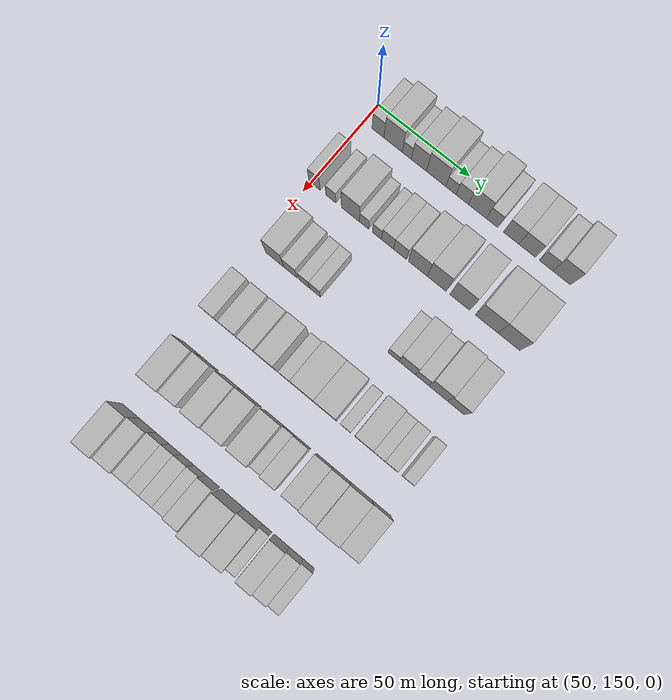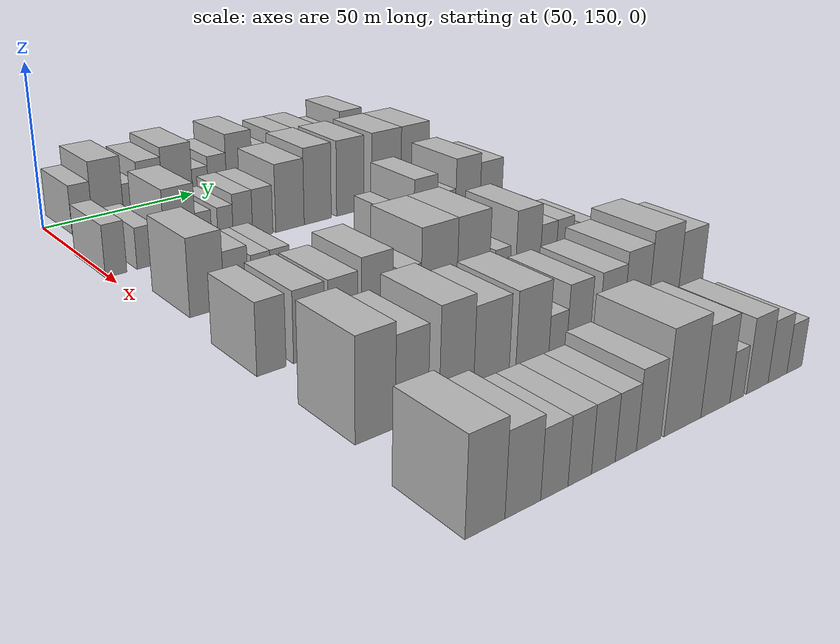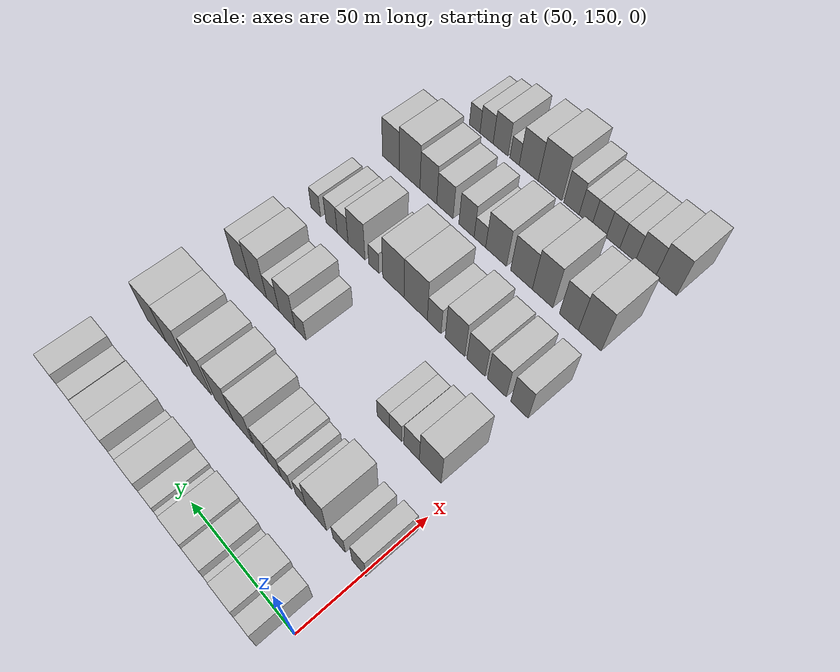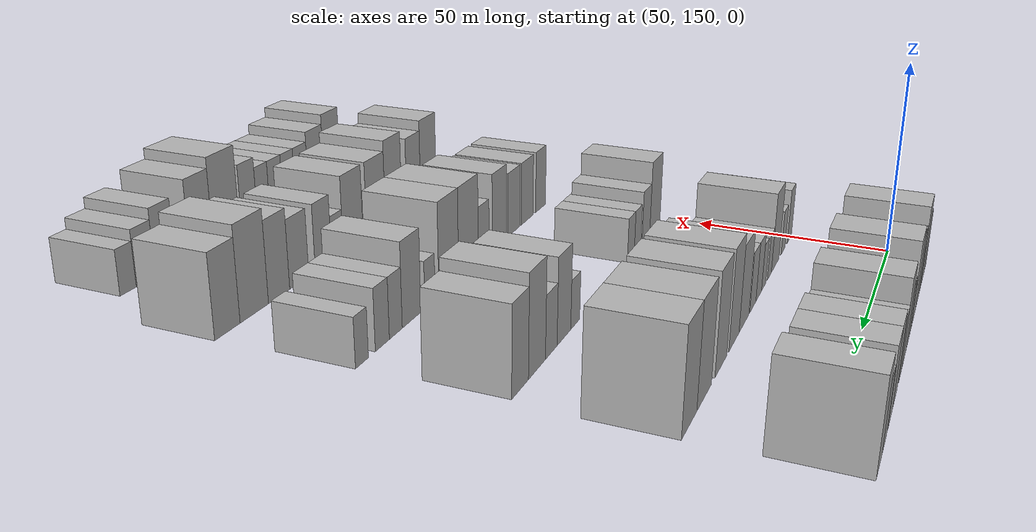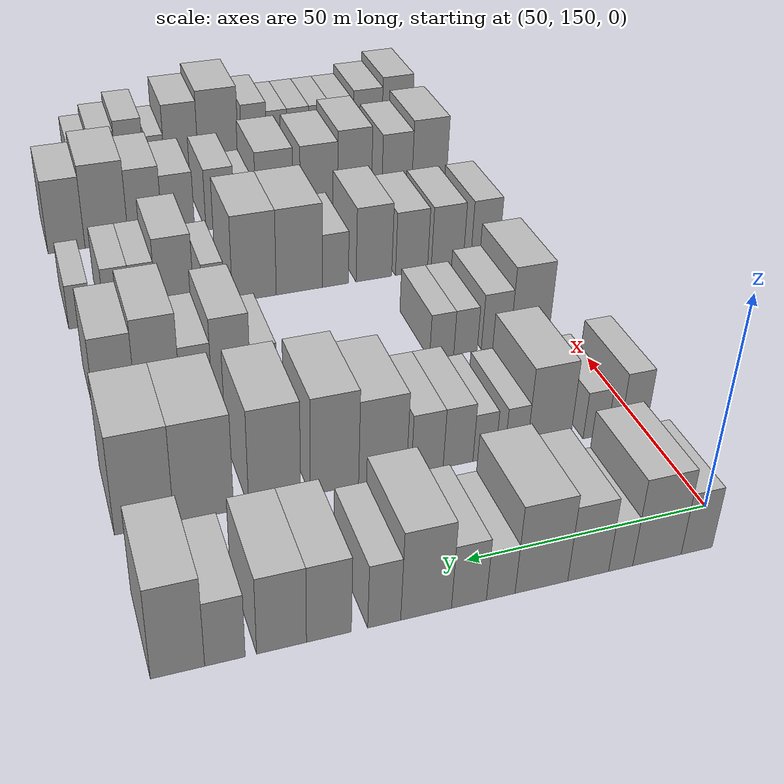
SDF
<sdf version="1.6">
 <world name="default">
  <model name="building_81">
   <static>1</static>
   <pose>50.0000 157.9617 0 0.000000 0.000000 0.000000</pose>
   <link name="link">
    <pose>0 0 7.50 0 0 0</pose>
    <collision name="collision"><geometry><box><size>20.0000 6.5381 15.0000</size></box></geometry></collision>
    <visual name="visual">
     <cast_shadows>0</cast_shadows>
     <geometry><box><size>20.0000 6.5381 15.0000</size></box></geometry>
     <material>
      <script>
       <uri>model://HANNAS_wall/materials/scripts</uri>
       <uri>model://HANNAS_wall/materials/textures</uri>
       <name>vrc/HANNAS_wall</name>
      </script>
     </material>
    </visual>
   </link>
  </model>
  <model name="building_82">
   <static>1</static>
   <pose>50.0000 166.2447 0 0.000000 0.000000 0.000000</pose>
   <link name="link">
    <pose>0 0 10.50 0 0 0</pose>
    <collision name="collision"><geometry><box><size>20.0000 10.0279 21.0000</size></box></geometry></collision>
    <visual name="visual">
     <cast_shadows>0</cast_shadows>
     <geometry><box><size>20.0000 10.0279 21.0000</size></box></geometry>
     <material>
      <script>
       <uri>model://HANNAS_wall/materials/scripts</uri>
       <uri>model://HANNAS_wall/materials/textures</uri>
       <name>vrc/HANNAS_wall</name>
      </script>
     </material>
    </visual>
   </link>
  </model>
  <model name="building_83">
   <static>1</static>
   <pose>50.0000 173.7285 0 0.000000 0.000000 0.000000</pose>
   <link name="link">
    <pose>0 0 6.00 0 0 0</pose>
    <collision name="collision"><geometry><box><size>20.0000 4.9398 12.0000</size></box></geometry></collision>
    <visual name="visual">
     <cast_shadows>0</cast_shadows>
     <geometry><box><size>20.0000 4.9398 12.0000</size></box></geometry>
     <material>
      <script>
       <uri>model://HANNAS_wall/materials/scripts</uri>
       <uri>model://HANNAS_wall/materials/textures</uri>
       <name>vrc/HANNAS_wall</name>
      </script>
     </material>
    </visual>
   </link>
  </model>
  <model name="building_84">
   <static>1</static>
   <pose>50.0000 180.3081 0 0.000000 0.000000 0.000000</pose>
   <link name="link">
    <pose>0 0 9.00 0 0 0</pose>
    <collision name="collision"><geometry><box><size>20.0000 8.2195 18.0000</size></box></geometry></collision>
    <visual name="visual">
     <cast_shadows>0</cast_shadows>
     <geometry><box><size>20.0000 8.2195 18.0000</size></box></geometry>
     <material>
      <script>
       <uri>model://HANNAS_wall/materials/scripts</uri>
       <uri>model://HANNAS_wall/materials/textures</uri>
       <name>vrc/HANNAS_wall</name>
      </script>
     </material>
    </visual>
   </link>
  </model>
  <model name="building_85">
   <static>1</static>
   <pose>50.0000 189.6253 0 0.000000 0.000000 0.000000</pose>
   <link name="link">
    <pose>0 0 10.50 0 0 0</pose>
    <collision name="collision"><geometry><box><size>20.0000 10.4149 21.0000</size></box></geometry></collision>
    <visual name="visual">
     <cast_shadows>0</cast_shadows>
     <geometry><box><size>20.0000 10.4149 21.0000</size></box></geometry>
     <material>
      <script>
       <uri>model://HANNAS_wall/materials/scripts</uri>
       <uri>model://HANNAS_wall/materials/textures</uri>
       <name>vrc/HANNAS_wall</name>
      </script>
     </material>
    </visual>
   </link>
  </model>
  <model name="building_86">
   <static>1</static>
   <pose>50.0000 197.6083 0 0.000000 0.000000 0.000000</pose>
   <link name="link">
    <pose>0 0 6.00 0 0 0</pose>
    <collision name="collision"><geometry><box><size>20.0000 5.5510 12.0000</size></box></geometry></collision>
    <visual name="visual">
     <cast_shadows>0</cast_shadows>
     <geometry><box><size>20.0000 5.5510 12.0000</size></box></geometry>
     <material>
      <script>
       <uri>model://HANNAS_wall/materials/scripts</uri>
       <uri>model://HANNAS_wall/materials/textures</uri>
       <name>vrc/HANNAS_wall</name>
      </script>
     </material>
    </visual>
   </link>
  </model>
  <model name="building_87">
   <static>1</static>
   <pose>50.0000 203.7312 0 0.000000 0.000000 0.000000</pose>
   <link name="link">
    <pose>0 0 7.50 0 0 0</pose>
    <collision name="collision"><geometry><box><size>20.0000 6.6949 15.0000</size></box></geometry></collision>
    <visual name="visual">
     <cast_shadows>0</cast_shadows>
     <geometry><box><size>20.0000 6.6949 15.0000</size></box></geometry>
     <material>
      <script>
       <uri>model://HANNAS_wall/materials/scripts</uri>
       <uri>model://HANNAS_wall/materials/textures</uri>
       <name>vrc/HANNAS_wall</name>
      </script>
     </material>
    </visual>
   </link>
  </model>
  <model name="building_88">
   <static>1</static>
   <pose>50.0000 211.8612 0 0.000000 0.000000 0.000000</pose>
   <link name="link">
    <pose>0 0 10.50 0 0 0</pose>
    <collision name="collision"><geometry><box><size>20.0000 9.5651 21.0000</size></box></geometry></collision>
    <visual name="visual">
     <cast_shadows>0</cast_shadows>
     <geometry><box><size>20.0000 9.5651 21.0000</size></box></geometry>
     <material>
      <script>
       <uri>model://HANNAS_wall/materials/scripts</uri>
       <uri>model://HANNAS_wall/materials/textures</uri>
       <name>vrc/HANNAS_wall</name>
      </script>
     </material>
    </visual>
   </link>
  </model>
  <model name="building_89">
   <static>1</static>
   <pose>50.0000 219.6979 0 0.000000 0.000000 0.000000</pose>
   <link name="link">
    <pose>0 0 7.50 0 0 0</pose>
    <collision name="collision"><geometry><box><size>20.0000 6.1083 15.0000</size></box></geometry></collision>
    <visual name="visual">
     <cast_shadows>0</cast_shadows>
     <geometry><box><size>20.0000 6.1083 15.0000</size></box></geometry>
     <material>
      <script>
       <uri>model://HANNAS_wall/materials/scripts</uri>
       <uri>model://HANNAS_wall/materials/textures</uri>
       <name>vrc/HANNAS_wall</name>
      </script>
     </material>
    </visual>
   </link>
  </model>
  <model name="building_90">
   <static>1</static>
   <pose>50.0000 229.8114 0 0.000000 0.000000 0.000000</pose>
   <link name="link">
    <pose>0 0 9.00 0 0 0</pose>
    <collision name="collision"><geometry><box><size>20.0000 8.1188 18.0000</size></box></geometry></collision>
    <visual name="visual">
     <cast_shadows>0</cast_shadows>
     <geometry><box><size>20.0000 8.1188 18.0000</size></box></geometry>
     <material>
      <script>
       <uri>model://HANNAS_wall/materials/scripts</uri>
       <uri>model://HANNAS_wall/materials/textures</uri>
       <name>vrc/HANNAS_wall</name>
      </script>
     </material>
    </visual>
   </link>
  </model>
  <model name="building_91">
   <static>1</static>
   <pose>50.0000 238.2977 0 0.000000 0.000000 0.000000</pose>
   <link name="link">
    <pose>0 0 9.00 0 0 0</pose>
    <collision name="collision"><geometry><box><size>20.0000 8.8539 18.0000</size></box></geometry></collision>
    <visual name="visual">
     <cast_shadows>0</cast_shadows>
     <geometry><box><size>20.0000 8.8539 18.0000</size></box></geometry>
     <material>
      <script>
       <uri>model://HANNAS_wall/materials/scripts</uri>
       <uri>model://HANNAS_wall/materials/textures</uri>
       <name>vrc/HANNAS_wall</name>
      </script>
     </material>
    </visual>
   </link>
  </model>
  <model name="building_92">
   <static>1</static>
   <pose>50.0000 248.2435 0 0.000000 0.000000 0.000000</pose>
   <link name="link">
    <pose>0 0 7.50 0 0 0</pose>
    <collision name="collision"><geometry><box><size>20.0000 7.0377 15.0000</size></box></geometry></collision>
    <visual name="visual">
     <cast_shadows>0</cast_shadows>
     <geometry><box><size>20.0000 7.0377 15.0000</size></box></geometry>
     <material>
      <script>
       <uri>model://HANNAS_wall/materials/scripts</uri>
       <uri>model://HANNAS_wall/materials/textures</uri>
       <name>vrc/HANNAS_wall</name>
      </script>
     </material>
    </visual>
   </link>
  </model>
  <model name="building_93">
   <static>1</static>
   <pose>50.0000 256.4034 0 0.000000 0.000000 0.000000</pose>
   <link name="link">
    <pose>0 0 10.50 0 0 0</pose>
    <collision name="collision"><geometry><box><size>20.0000 9.2820 21.0000</size></box></geometry></collision>
    <visual name="visual">
     <cast_shadows>0</cast_shadows>
     <geometry><box><size>20.0000 9.2820 21.0000</size></box></geometry>
     <material>
      <script>
       <uri>model://HANNAS_wall/materials/scripts</uri>
       <uri>model://HANNAS_wall/materials/textures</uri>
       <name>vrc/HANNAS_wall</name>
      </script>
     </material>
    </visual>
   </link>
  </model>
  <model name="building_209">
   <static>1</static>
   <pose>85.0000 152.1197 0 0.000000 0.000000 0.000000</pose>
   <link name="link">
    <pose>0 0 7.50 0 0 0</pose>
    <collision name="collision"><geometry><box><size>20.0000 6.2400 15.0000</size></box></geometry></collision>
    <visual name="visual">
     <cast_shadows>0</cast_shadows>
     <geometry><box><size>20.0000 6.2400 15.0000</size></box></geometry>
     <material>
      <script>
       <uri>model://HANNAS_wall/materials/scripts</uri>
       <uri>model://HANNAS_wall/materials/textures</uri>
       <name>vrc/HANNAS_wall</name>
      </script>
     </material>
    </visual>
   </link>
  </model>
  <model name="building_210">
   <static>1</static>
   <pose>85.0000 161.0272 0 0.000000 0.000000 0.000000</pose>
   <link name="link">
    <pose>0 0 6.00 0 0 0</pose>
    <collision name="collision"><geometry><box><size>20.0000 5.5750 12.0000</size></box></geometry></collision>
    <visual name="visual">
     <cast_shadows>0</cast_shadows>
     <geometry><box><size>20.0000 5.5750 12.0000</size></box></geometry>
     <material>
      <script>
       <uri>model://HANNAS_wall/materials/scripts</uri>
       <uri>model://HANNAS_wall/materials/textures</uri>
       <name>vrc/HANNAS_wall</name>
      </script>
     </material>
    </visual>
   </link>
  </model>
  <model name="building_211">
   <static>1</static>
   <pose>85.0000 171.6989 0 0.000000 0.000000 0.000000</pose>
   <link name="link">
    <pose>0 0 10.50 0 0 0</pose>
    <collision name="collision"><geometry><box><size>20.0000 9.7683 21.0000</size></box></geometry></collision>
    <visual name="visual">
     <cast_shadows>0</cast_shadows>
     <geometry><box><size>20.0000 9.7683 21.0000</size></box></geometry>
     <material>
      <script>
       <uri>model://HANNAS_wall/materials/scripts</uri>
       <uri>model://HANNAS_wall/materials/textures</uri>
       <name>vrc/HANNAS_wall</name>
      </script>
     </material>
    </visual>
   </link>
  </model>
  <model name="building_212">
   <static>1</static>
   <pose>85.0000 179.0730 0 0.000000 0.000000 0.000000</pose>
   <link name="link">
    <pose>0 0 6.00 0 0 0</pose>
    <collision name="collision"><geometry><box><size>20.0000 4.9799 12.0000</size></box></geometry></collision>
    <visual name="visual">
     <cast_shadows>0</cast_shadows>
     <geometry><box><size>20.0000 4.9799 12.0000</size></box></geometry>
     <material>
      <script>
       <uri>model://HANNAS_wall/materials/scripts</uri>
       <uri>model://HANNAS_wall/materials/textures</uri>
       <name>vrc/HANNAS_wall</name>
      </script>
     </material>
    </visual>
   </link>
  </model>
  <model name="building_213">
   <static>1</static>
   <pose>85.0000 186.0556 0 0.000000 0.000000 0.000000</pose>
   <link name="link">
    <pose>0 0 6.00 0 0 0</pose>
    <collision name="collision"><geometry><box><size>20.0000 4.9852 12.0000</size></box></geometry></collision>
    <visual name="visual">
     <cast_shadows>0</cast_shadows>
     <geometry><box><size>20.0000 4.9852 12.0000</size></box></geometry>
     <material>
      <script>
       <uri>model://HANNAS_wall/materials/scripts</uri>
       <uri>model://HANNAS_wall/materials/textures</uri>
       <name>vrc/HANNAS_wall</name>
      </script>
     </material>
    </visual>
   </link>
  </model>
  <model name="building_214">
   <static>1</static>
   <pose>85.0000 191.7838 0 0.000000 0.000000 0.000000</pose>
   <link name="link">
    <pose>0 0 7.50 0 0 0</pose>
    <collision name="collision"><geometry><box><size>20.0000 6.4712 15.0000</size></box></geometry></collision>
    <visual name="visual">
     <cast_shadows>0</cast_shadows>
     <geometry><box><size>20.0000 6.4712 15.0000</size></box></geometry>
     <material>
      <script>
       <uri>model://HANNAS_wall/materials/scripts</uri>
       <uri>model://HANNAS_wall/materials/textures</uri>
       <name>vrc/HANNAS_wall</name>
      </script>
     </material>
    </visual>
   </link>
  </model>
  <model name="building_215">
   <static>1</static>
   <pose>85.0000 198.4610 0 0.000000 0.000000 0.000000</pose>
   <link name="link">
    <pose>0 0 7.50 0 0 0</pose>
    <collision name="collision"><geometry><box><size>20.0000 6.8832 15.0000</size></box></geometry></collision>
    <visual name="visual">
     <cast_shadows>0</cast_shadows>
     <geometry><box><size>20.0000 6.8832 15.0000</size></box></geometry>
     <material>
      <script>
       <uri>model://HANNAS_wall/materials/scripts</uri>
       <uri>model://HANNAS_wall/materials/textures</uri>
       <name>vrc/HANNAS_wall</name>
      </script>
     </material>
    </visual>
   </link>
  </model>
  <model name="building_216">
   <static>1</static>
   <pose>85.0000 207.9608 0 0.000000 0.000000 0.000000</pose>
   <link name="link">
    <pose>0 0 10.50 0 0 0</pose>
    <collision name="collision"><geometry><box><size>20.0000 10.1166 21.0000</size></box></geometry></collision>
    <visual name="visual">
     <cast_shadows>0</cast_shadows>
     <geometry><box><size>20.0000 10.1166 21.0000</size></box></geometry>
     <material>
      <script>
       <uri>model://HANNAS_wall/materials/scripts</uri>
       <uri>model://HANNAS_wall/materials/textures</uri>
       <name>vrc/HANNAS_wall</name>
      </script>
     </material>
    </visual>
   </link>
  </model>
  <model name="building_217">
   <static>1</static>
   <pose>85.0000 218.0150 0 0.000000 0.000000 0.000000</pose>
   <link name="link">
    <pose>0 0 12.00 0 0 0</pose>
    <collision name="collision"><geometry><box><size>20.0000 9.9918 24.0000</size></box></geometry></collision>
    <visual name="visual">
     <cast_shadows>0</cast_shadows>
     <geometry><box><size>20.0000 9.9918 24.0000</size></box></geometry>
     <material>
      <script>
       <uri>model://HANNAS_wall/materials/scripts</uri>
       <uri>model://HANNAS_wall/materials/textures</uri>
       <name>vrc/HANNAS_wall</name>
      </script>
     </material>
    </visual>
   </link>
  </model>
  <model name="building_218">
   <static>1</static>
   <pose>85.0000 230.2554 0 0.000000 0.000000 0.000000</pose>
   <link name="link">
    <pose>0 0 12.00 0 0 0</pose>
    <collision name="collision"><geometry><box><size>20.0000 10.4891 24.0000</size></box></geometry></collision>
    <visual name="visual">
     <cast_shadows>0</cast_shadows>
     <geometry><box><size>20.0000 10.4891 24.0000</size></box></geometry>
     <material>
      <script>
       <uri>model://HANNAS_wall/materials/scripts</uri>
       <uri>model://HANNAS_wall/materials/textures</uri>
       <name>vrc/HANNAS_wall</name>
      </script>
     </material>
    </visual>
   </link>
  </model>
  <model name="building_219">
   <static>1</static>
   <pose>85.0000 244.3786 0 0.000000 0.000000 0.000000</pose>
   <link name="link">
    <pose>0 0 12.00 0 0 0</pose>
    <collision name="collision"><geometry><box><size>20.0000 11.7572 24.0000</size></box></geometry></collision>
    <visual name="visual">
     <cast_shadows>0</cast_shadows>
     <geometry><box><size>20.0000 11.7572 24.0000</size></box></geometry>
     <material>
      <script>
       <uri>model://HANNAS_wall/materials/scripts</uri>
       <uri>model://HANNAS_wall/materials/textures</uri>
       <name>vrc/HANNAS_wall</name>
      </script>
     </material>
    </visual>
   </link>
  </model>
  <model name="building_220">
   <static>1</static>
   <pose>85.0000 255.9901 0 0.000000 0.000000 0.000000</pose>
   <link name="link">
    <pose>0 0 12.00 0 0 0</pose>
    <collision name="collision"><geometry><box><size>20.0000 11.4658 24.0000</size></box></geometry></collision>
    <visual name="visual">
     <cast_shadows>0</cast_shadows>
     <geometry><box><size>20.0000 11.4658 24.0000</size></box></geometry>
     <material>
      <script>
       <uri>model://HANNAS_wall/materials/scripts</uri>
       <uri>model://HANNAS_wall/materials/textures</uri>
       <name>vrc/HANNAS_wall</name>
      </script>
     </material>
    </visual>
   </link>
  </model>
  <model name="building_339">
   <static>1</static>
   <pose>120.0000 160.0223 0 0.000000 0.000000 0.000000</pose>
   <link name="link">
    <pose>0 0 10.50 0 0 0</pose>
    <collision name="collision"><geometry><box><size>20.0000 9.7474 21.0000</size></box></geometry></collision>
    <visual name="visual">
     <cast_shadows>0</cast_shadows>
     <geometry><box><size>20.0000 9.7474 21.0000</size></box></geometry>
     <material>
      <script>
       <uri>model://HANNAS_wall/materials/scripts</uri>
       <uri>model://HANNAS_wall/materials/textures</uri>
       <name>vrc/HANNAS_wall</name>
      </script>
     </material>
    </visual>
   </link>
  </model>
  <model name="building_340">
   <static>1</static>
   <pose>120.0000 168.4548 0 0.000000 0.000000 0.000000</pose>
   <link name="link">
    <pose>0 0 7.50 0 0 0</pose>
    <collision name="collision"><geometry><box><size>20.0000 7.1176 15.0000</size></box></geometry></collision>
    <visual name="visual">
     <cast_shadows>0</cast_shadows>
     <geometry><box><size>20.0000 7.1176 15.0000</size></box></geometry>
     <material>
      <script>
       <uri>model://HANNAS_wall/materials/scripts</uri>
       <uri>model://HANNAS_wall/materials/textures</uri>
       <name>vrc/HANNAS_wall</name>
      </script>
     </material>
    </visual>
   </link>
  </model>
  <model name="building_341">
   <static>1</static>
   <pose>120.0000 175.8916 0 0.000000 0.000000 0.000000</pose>
   <link name="link">
    <pose>0 0 6.00 0 0 0</pose>
    <collision name="collision"><geometry><box><size>20.0000 5.7561 12.0000</size></box></geometry></collision>
    <visual name="visual">
     <cast_shadows>0</cast_shadows>
     <geometry><box><size>20.0000 5.7561 12.0000</size></box></geometry>
     <material>
      <script>
       <uri>model://HANNAS_wall/materials/scripts</uri>
       <uri>model://HANNAS_wall/materials/textures</uri>
       <name>vrc/HANNAS_wall</name>
      </script>
     </material>
    </visual>
   </link>
  </model>
  <model name="building_342">
   <static>1</static>
   <pose>120.0000 181.7169 0 0.000000 0.000000 0.000000</pose>
   <link name="link">
    <pose>0 0 6.00 0 0 0</pose>
    <collision name="collision"><geometry><box><size>20.0000 5.8945 12.0000</size></box></geometry></collision>
    <visual name="visual">
     <cast_shadows>0</cast_shadows>
     <geometry><box><size>20.0000 5.8945 12.0000</size></box></geometry>
     <material>
      <script>
       <uri>model://HANNAS_wall/materials/scripts</uri>
       <uri>model://HANNAS_wall/materials/textures</uri>
       <name>vrc/HANNAS_wall</name>
      </script>
     </material>
    </visual>
   </link>
  </model>
  <model name="building_343">
   <static>1</static>
   <pose>120.0000 223.5016 0 0.000000 0.000000 0.000000</pose>
   <link name="link">
    <pose>0 0 6.00 0 0 0</pose>
    <collision name="collision"><geometry><box><size>20.0000 5.8916 12.0000</size></box></geometry></collision>
    <visual name="visual">
     <cast_shadows>0</cast_shadows>
     <geometry><box><size>20.0000 5.8916 12.0000</size></box></geometry>
     <material>
      <script>
       <uri>model://HANNAS_wall/materials/scripts</uri>
       <uri>model://HANNAS_wall/materials/textures</uri>
       <name>vrc/HANNAS_wall</name>
      </script>
     </material>
    </visual>
   </link>
  </model>
  <model name="building_344">
   <static>1</static>
   <pose>120.0000 230.7535 0 0.000000 0.000000 0.000000</pose>
   <link name="link">
    <pose>0 0 10.50 0 0 0</pose>
    <collision name="collision"><geometry><box><size>20.0000 8.6122 21.0000</size></box></geometry></collision>
    <visual name="visual">
     <cast_shadows>0</cast_shadows>
     <geometry><box><size>20.0000 8.6122 21.0000</size></box></geometry>
     <material>
      <script>
       <uri>model://HANNAS_wall/materials/scripts</uri>
       <uri>model://HANNAS_wall/materials/textures</uri>
       <name>vrc/HANNAS_wall</name>
      </script>
     </material>
    </visual>
   </link>
  </model>
  <model name="building_345">
   <static>1</static>
   <pose>120.0000 238.5213 0 0.000000 0.000000 0.000000</pose>
   <link name="link">
    <pose>0 0 7.50 0 0 0</pose>
    <collision name="collision"><geometry><box><size>20.0000 6.9234 15.0000</size></box></geometry></collision>
    <visual name="visual">
     <cast_shadows>0</cast_shadows>
     <geometry><box><size>20.0000 6.9234 15.0000</size></box></geometry>
     <material>
      <script>
       <uri>model://HANNAS_wall/materials/scripts</uri>
       <uri>model://HANNAS_wall/materials/textures</uri>
       <name>vrc/HANNAS_wall</name>
      </script>
     </material>
    </visual>
   </link>
  </model>
  <model name="building_346">
   <static>1</static>
   <pose>120.0000 246.7833 0 0.000000 0.000000 0.000000</pose>
   <link name="link">
    <pose>0 0 12.00 0 0 0</pose>
    <collision name="collision"><geometry><box><size>20.0000 9.6006 24.0000</size></box></geometry></collision>
    <visual name="visual">
     <cast_shadows>0</cast_shadows>
     <geometry><box><size>20.0000 9.6006 24.0000</size></box></geometry>
     <material>
      <script>
       <uri>model://HANNAS_wall/materials/scripts</uri>
       <uri>model://HANNAS_wall/materials/textures</uri>
       <name>vrc/HANNAS_wall</name>
      </script>
     </material>
    </visual>
   </link>
  </model>
  <model name="building_347">
   <static>1</static>
   <pose>120.0000 256.0207 0 0.000000 0.000000 0.000000</pose>
   <link name="link">
    <pose>0 0 10.50 0 0 0</pose>
    <collision name="collision"><geometry><box><size>20.0000 8.8743 21.0000</size></box></geometry></collision>
    <visual name="visual">
     <cast_shadows>0</cast_shadows>
     <geometry><box><size>20.0000 8.8743 21.0000</size></box></geometry>
     <material>
      <script>
       <uri>model://HANNAS_wall/materials/scripts</uri>
       <uri>model://HANNAS_wall/materials/textures</uri>
       <name>vrc/HANNAS_wall</name>
      </script>
     </material>
    </visual>
   </link>
  </model>
  <model name="building_463">
   <static>1</static>
   <pose>155.0000 156.4435 0 0.000000 0.000000 0.000000</pose>
   <link name="link">
    <pose>0 0 9.00 0 0 0</pose>
    <collision name="collision"><geometry><box><size>20.0000 7.7171 18.0000</size></box></geometry></collision>
    <visual name="visual">
     <cast_shadows>0</cast_shadows>
     <geometry><box><size>20.0000 7.7171 18.0000</size></box></geometry>
     <material>
      <script>
       <uri>model://HANNAS_wall/materials/scripts</uri>
       <uri>model://HANNAS_wall/materials/textures</uri>
       <name>vrc/HANNAS_wall</name>
      </script>
     </material>
    </visual>
   </link>
  </model>
  <model name="building_464">
   <static>1</static>
   <pose>155.0000 166.6281 0 0.000000 0.000000 0.000000</pose>
   <link name="link">
    <pose>0 0 9.00 0 0 0</pose>
    <collision name="collision"><geometry><box><size>20.0000 8.6519 18.0000</size></box></geometry></collision>
    <visual name="visual">
     <cast_shadows>0</cast_shadows>
     <geometry><box><size>20.0000 8.6519 18.0000</size></box></geometry>
     <material>
      <script>
       <uri>model://HANNAS_wall/materials/scripts</uri>
       <uri>model://HANNAS_wall/materials/textures</uri>
       <name>vrc/HANNAS_wall</name>
      </script>
     </material>
    </visual>
   </link>
  </model>
  <model name="building_465">
   <static>1</static>
   <pose>155.0000 176.2298 0 0.000000 0.000000 0.000000</pose>
   <link name="link">
    <pose>0 0 9.00 0 0 0</pose>
    <collision name="collision"><geometry><box><size>20.0000 8.5515 18.0000</size></box></geometry></collision>
    <visual name="visual">
     <cast_shadows>0</cast_shadows>
     <geometry><box><size>20.0000 8.5515 18.0000</size></box></geometry>
     <material>
      <script>
       <uri>model://HANNAS_wall/materials/scripts</uri>
       <uri>model://HANNAS_wall/materials/textures</uri>
       <name>vrc/HANNAS_wall</name>
      </script>
     </material>
    </visual>
   </link>
  </model>
  <model name="building_466">
   <static>1</static>
   <pose>155.0000 186.1876 0 0.000000 0.000000 0.000000</pose>
   <link name="link">
    <pose>0 0 10.50 0 0 0</pose>
    <collision name="collision"><geometry><box><size>20.0000 9.3641 21.0000</size></box></geometry></collision>
    <visual name="visual">
     <cast_shadows>0</cast_shadows>
     <geometry><box><size>20.0000 9.3641 21.0000</size></box></geometry>
     <material>
      <script>
       <uri>model://HANNAS_wall/materials/scripts</uri>
       <uri>model://HANNAS_wall/materials/textures</uri>
       <name>vrc/HANNAS_wall</name>
      </script>
     </material>
    </visual>
   </link>
  </model>
  <model name="building_467">
   <static>1</static>
   <pose>155.0000 196.2590 0 0.000000 0.000000 0.000000</pose>
   <link name="link">
    <pose>0 0 7.50 0 0 0</pose>
    <collision name="collision"><geometry><box><size>20.0000 6.7789 15.0000</size></box></geometry></collision>
    <visual name="visual">
     <cast_shadows>0</cast_shadows>
     <geometry><box><size>20.0000 6.7789 15.0000</size></box></geometry>
     <material>
      <script>
       <uri>model://HANNAS_wall/materials/scripts</uri>
       <uri>model://HANNAS_wall/materials/textures</uri>
       <name>vrc/HANNAS_wall</name>
      </script>
     </material>
    </visual>
   </link>
  </model>
  <model name="building_468">
   <static>1</static>
   <pose>155.0000 205.4991 0 0.000000 0.000000 0.000000</pose>
   <link name="link">
    <pose>0 0 12.00 0 0 0</pose>
    <collision name="collision"><geometry><box><size>20.0000 11.7012 24.0000</size></box></geometry></collision>
    <visual name="visual">
     <cast_shadows>0</cast_shadows>
     <geometry><box><size>20.0000 11.7012 24.0000</size></box></geometry>
     <material>
      <script>
       <uri>model://HANNAS_wall/materials/scripts</uri>
       <uri>model://HANNAS_wall/materials/textures</uri>
       <name>vrc/HANNAS_wall</name>
      </script>
     </material>
    </visual>
   </link>
  </model>
  <model name="building_469">
   <static>1</static>
   <pose>155.0000 216.8418 0 0.000000 0.000000 0.000000</pose>
   <link name="link">
    <pose>0 0 12.00 0 0 0</pose>
    <collision name="collision"><geometry><box><size>20.0000 10.9840 24.0000</size></box></geometry></collision>
    <visual name="visual">
     <cast_shadows>0</cast_shadows>
     <geometry><box><size>20.0000 10.9840 24.0000</size></box></geometry>
     <material>
      <script>
       <uri>model://HANNAS_wall/materials/scripts</uri>
       <uri>model://HANNAS_wall/materials/textures</uri>
       <name>vrc/HANNAS_wall</name>
      </script>
     </material>
    </visual>
   </link>
  </model>
  <model name="building_470">
   <static>1</static>
   <pose>155.0000 227.0355 0 0.000000 0.000000 0.000000</pose>
   <link name="link">
    <pose>0 0 6.00 0 0 0</pose>
    <collision name="collision"><geometry><box><size>20.0000 5.4035 12.0000</size></box></geometry></collision>
    <visual name="visual">
     <cast_shadows>0</cast_shadows>
     <geometry><box><size>20.0000 5.4035 12.0000</size></box></geometry>
     <material>
      <script>
       <uri>model://HANNAS_wall/materials/scripts</uri>
       <uri>model://HANNAS_wall/materials/textures</uri>
       <name>vrc/HANNAS_wall</name>
      </script>
     </material>
    </visual>
   </link>
  </model>
  <model name="building_471">
   <static>1</static>
   <pose>155.0000 236.3122 0 0.000000 0.000000 0.000000</pose>
   <link name="link">
    <pose>0 0 10.50 0 0 0</pose>
    <collision name="collision"><geometry><box><size>20.0000 9.1499 21.0000</size></box></geometry></collision>
    <visual name="visual">
     <cast_shadows>0</cast_shadows>
     <geometry><box><size>20.0000 9.1499 21.0000</size></box></geometry>
     <material>
      <script>
       <uri>model://HANNAS_wall/materials/scripts</uri>
       <uri>model://HANNAS_wall/materials/textures</uri>
       <name>vrc/HANNAS_wall</name>
      </script>
     </material>
    </visual>
   </link>
  </model>
  <model name="building_472">
   <static>1</static>
   <pose>155.0000 243.9058 0 0.000000 0.000000 0.000000</pose>
   <link name="link">
    <pose>0 0 7.50 0 0 0</pose>
    <collision name="collision"><geometry><box><size>20.0000 6.0373 15.0000</size></box></geometry></collision>
    <visual name="visual">
     <cast_shadows>0</cast_shadows>
     <geometry><box><size>20.0000 6.0373 15.0000</size></box></geometry>
     <material>
      <script>
       <uri>model://HANNAS_wall/materials/scripts</uri>
       <uri>model://HANNAS_wall/materials/textures</uri>
       <name>vrc/HANNAS_wall</name>
      </script>
     </material>
    </visual>
   </link>
  </model>
  <model name="building_473">
   <static>1</static>
   <pose>155.0000 250.0915 0 0.000000 0.000000 0.000000</pose>
   <link name="link">
    <pose>0 0 7.50 0 0 0</pose>
    <collision name="collision"><geometry><box><size>20.0000 6.3339 15.0000</size></box></geometry></collision>
    <visual name="visual">
     <cast_shadows>0</cast_shadows>
     <geometry><box><size>20.0000 6.3339 15.0000</size></box></geometry>
     <material>
      <script>
       <uri>model://HANNAS_wall/materials/scripts</uri>
       <uri>model://HANNAS_wall/materials/textures</uri>
       <name>vrc/HANNAS_wall</name>
      </script>
     </material>
    </visual>
   </link>
  </model>
  <model name="building_474">
   <static>1</static>
   <pose>155.0000 258.9970 0 0.000000 0.000000 0.000000</pose>
   <link name="link">
    <pose>0 0 6.00 0 0 0</pose>
    <collision name="collision"><geometry><box><size>20.0000 5.4772 12.0000</size></box></geometry></collision>
    <visual name="visual">
     <cast_shadows>0</cast_shadows>
     <geometry><box><size>20.0000 5.4772 12.0000</size></box></geometry>
     <material>
      <script>
       <uri>model://HANNAS_wall/materials/scripts</uri>
       <uri>model://HANNAS_wall/materials/textures</uri>
       <name>vrc/HANNAS_wall</name>
      </script>
     </material>
    </visual>
   </link>
  </model>
  <model name="building_592">
   <static>1</static>
   <pose>190.0000 158.4571 0 0.000000 0.000000 0.000000</pose>
   <link name="link">
    <pose>0 0 12.00 0 0 0</pose>
    <collision name="collision"><geometry><box><size>20.0000 10.1524 24.0000</size></box></geometry></collision>
    <visual name="visual">
     <cast_shadows>0</cast_shadows>
     <geometry><box><size>20.0000 10.1524 24.0000</size></box></geometry>
     <material>
      <script>
       <uri>model://HANNAS_wall/materials/scripts</uri>
       <uri>model://HANNAS_wall/materials/textures</uri>
       <name>vrc/HANNAS_wall</name>
      </script>
     </material>
    </visual>
   </link>
  </model>
  <model name="building_593">
   <static>1</static>
   <pose>190.0000 167.8849 0 0.000000 0.000000 0.000000</pose>
   <link name="link">
    <pose>0 0 10.50 0 0 0</pose>
    <collision name="collision"><geometry><box><size>20.0000 8.7031 21.0000</size></box></geometry></collision>
    <visual name="visual">
     <cast_shadows>0</cast_shadows>
     <geometry><box><size>20.0000 8.7031 21.0000</size></box></geometry>
     <material>
      <script>
       <uri>model://HANNAS_wall/materials/scripts</uri>
       <uri>model://HANNAS_wall/materials/textures</uri>
       <name>vrc/HANNAS_wall</name>
      </script>
     </material>
    </visual>
   </link>
  </model>
  <model name="building_594">
   <static>1</static>
   <pose>190.0000 180.0521 0 0.000000 0.000000 0.000000</pose>
   <link name="link">
    <pose>0 0 12.00 0 0 0</pose>
    <collision name="collision"><geometry><box><size>20.0000 9.6314 24.0000</size></box></geometry></collision>
    <visual name="visual">
     <cast_shadows>0</cast_shadows>
     <geometry><box><size>20.0000 9.6314 24.0000</size></box></geometry>
     <material>
      <script>
       <uri>model://HANNAS_wall/materials/scripts</uri>
       <uri>model://HANNAS_wall/materials/textures</uri>
       <name>vrc/HANNAS_wall</name>
      </script>
     </material>
    </visual>
   </link>
  </model>
  <model name="building_595">
   <static>1</static>
   <pose>190.0000 190.1005 0 0.000000 0.000000 0.000000</pose>
   <link name="link">
    <pose>0 0 10.50 0 0 0</pose>
    <collision name="collision"><geometry><box><size>20.0000 10.4653 21.0000</size></box></geometry></collision>
    <visual name="visual">
     <cast_shadows>0</cast_shadows>
     <geometry><box><size>20.0000 10.4653 21.0000</size></box></geometry>
     <material>
      <script>
       <uri>model://HANNAS_wall/materials/scripts</uri>
       <uri>model://HANNAS_wall/materials/textures</uri>
       <name>vrc/HANNAS_wall</name>
      </script>
     </material>
    </visual>
   </link>
  </model>
  <model name="building_596">
   <static>1</static>
   <pose>190.0000 202.5009 0 0.000000 0.000000 0.000000</pose>
   <link name="link">
    <pose>0 0 10.50 0 0 0</pose>
    <collision name="collision"><geometry><box><size>20.0000 10.3355 21.0000</size></box></geometry></collision>
    <visual name="visual">
     <cast_shadows>0</cast_shadows>
     <geometry><box><size>20.0000 10.3355 21.0000</size></box></geometry>
     <material>
      <script>
       <uri>model://HANNAS_wall/materials/scripts</uri>
       <uri>model://HANNAS_wall/materials/textures</uri>
       <name>vrc/HANNAS_wall</name>
      </script>
     </material>
    </visual>
   </link>
  </model>
  <model name="building_597">
   <static>1</static>
   <pose>190.0000 210.5883 0 0.000000 0.000000 0.000000</pose>
   <link name="link">
    <pose>0 0 6.00 0 0 0</pose>
    <collision name="collision"><geometry><box><size>20.0000 5.8393 12.0000</size></box></geometry></collision>
    <visual name="visual">
     <cast_shadows>0</cast_shadows>
     <geometry><box><size>20.0000 5.8393 12.0000</size></box></geometry>
     <material>
      <script>
       <uri>model://HANNAS_wall/materials/scripts</uri>
       <uri>model://HANNAS_wall/materials/textures</uri>
       <name>vrc/HANNAS_wall</name>
      </script>
     </material>
    </visual>
   </link>
  </model>
  <model name="building_598">
   <static>1</static>
   <pose>190.0000 217.4250 0 0.000000 0.000000 0.000000</pose>
   <link name="link">
    <pose>0 0 9.00 0 0 0</pose>
    <collision name="collision"><geometry><box><size>20.0000 7.8341 18.0000</size></box></geometry></collision>
    <visual name="visual">
     <cast_shadows>0</cast_shadows>
     <geometry><box><size>20.0000 7.8341 18.0000</size></box></geometry>
     <material>
      <script>
       <uri>model://HANNAS_wall/materials/scripts</uri>
       <uri>model://HANNAS_wall/materials/textures</uri>
       <name>vrc/HANNAS_wall</name>
      </script>
     </material>
    </visual>
   </link>
  </model>
  <model name="building_599">
   <static>1</static>
   <pose>190.0000 228.6364 0 0.000000 0.000000 0.000000</pose>
   <link name="link">
    <pose>0 0 9.00 0 0 0</pose>
    <collision name="collision"><geometry><box><size>20.0000 8.5889 18.0000</size></box></geometry></collision>
    <visual name="visual">
     <cast_shadows>0</cast_shadows>
     <geometry><box><size>20.0000 8.5889 18.0000</size></box></geometry>
     <material>
      <script>
       <uri>model://HANNAS_wall/materials/scripts</uri>
       <uri>model://HANNAS_wall/materials/textures</uri>
       <name>vrc/HANNAS_wall</name>
      </script>
     </material>
    </visual>
   </link>
  </model>
  <model name="building_600">
   <static>1</static>
   <pose>190.0000 237.4412 0 0.000000 0.000000 0.000000</pose>
   <link name="link">
    <pose>0 0 10.50 0 0 0</pose>
    <collision name="collision"><geometry><box><size>20.0000 9.0208 21.0000</size></box></geometry></collision>
    <visual name="visual">
     <cast_shadows>0</cast_shadows>
     <geometry><box><size>20.0000 9.0208 21.0000</size></box></geometry>
     <material>
      <script>
       <uri>model://HANNAS_wall/materials/scripts</uri>
       <uri>model://HANNAS_wall/materials/textures</uri>
       <name>vrc/HANNAS_wall</name>
      </script>
     </material>
    </visual>
   </link>
  </model>
  <model name="building_601">
   <static>1</static>
   <pose>190.0000 247.6116 0 0.000000 0.000000 0.000000</pose>
   <link name="link">
    <pose>0 0 12.00 0 0 0</pose>
    <collision name="collision"><geometry><box><size>20.0000 11.3200 24.0000</size></box></geometry></collision>
    <visual name="visual">
     <cast_shadows>0</cast_shadows>
     <geometry><box><size>20.0000 11.3200 24.0000</size></box></geometry>
     <material>
      <script>
       <uri>model://HANNAS_wall/materials/scripts</uri>
       <uri>model://HANNAS_wall/materials/textures</uri>
       <name>vrc/HANNAS_wall</name>
      </script>
     </material>
    </visual>
   </link>
  </model>
  <model name="building_602">
   <static>1</static>
   <pose>190.0000 258.0225 0 0.000000 0.000000 0.000000</pose>
   <link name="link">
    <pose>0 0 10.50 0 0 0</pose>
    <collision name="collision"><geometry><box><size>20.0000 9.5017 21.0000</size></box></geometry></collision>
    <visual name="visual">
     <cast_shadows>0</cast_shadows>
     <geometry><box><size>20.0000 9.5017 21.0000</size></box></geometry>
     <material>
      <script>
       <uri>model://HANNAS_wall/materials/scripts</uri>
       <uri>model://HANNAS_wall/materials/textures</uri>
       <name>vrc/HANNAS_wall</name>
      </script>
     </material>
    </visual>
   </link>
  </model>
  <model name="building_716">
   <static>1</static>
   <pose>225.0000 155.4436 0 0.000000 0.000000 0.000000</pose>
   <link name="link">
    <pose>0 0 10.50 0 0 0</pose>
    <collision name="collision"><geometry><box><size>20.0000 9.5060 21.0000</size></box></geometry></collision>
    <visual name="visual">
     <cast_shadows>0</cast_shadows>
     <geometry><box><size>20.0000 9.5060 21.0000</size></box></geometry>
     <material>
      <script>
       <uri>model://HANNAS_wall/materials/scripts</uri>
       <uri>model://HANNAS_wall/materials/textures</uri>
       <name>vrc/HANNAS_wall</name>
      </script>
     </material>
    </visual>
   </link>
  </model>
  <model name="building_717">
   <static>1</static>
   <pose>225.0000 164.6833 0 0.000000 0.000000 0.000000</pose>
   <link name="link">
    <pose>0 0 9.00 0 0 0</pose>
    <collision name="collision"><geometry><box><size>20.0000 8.9734 18.0000</size></box></geometry></collision>
    <visual name="visual">
     <cast_shadows>0</cast_shadows>
     <geometry><box><size>20.0000 8.9734 18.0000</size></box></geometry>
     <material>
      <script>
       <uri>model://HANNAS_wall/materials/scripts</uri>
       <uri>model://HANNAS_wall/materials/textures</uri>
       <name>vrc/HANNAS_wall</name>
      </script>
     </material>
    </visual>
   </link>
  </model>
  <model name="building_718">
   <static>1</static>
   <pose>225.0000 172.7527 0 0.000000 0.000000 0.000000</pose>
   <link name="link">
    <pose>0 0 7.50 0 0 0</pose>
    <collision name="collision"><geometry><box><size>20.0000 7.1654 15.0000</size></box></geometry></collision>
    <visual name="visual">
     <cast_shadows>0</cast_shadows>
     <geometry><box><size>20.0000 7.1654 15.0000</size></box></geometry>
     <material>
      <script>
       <uri>model://HANNAS_wall/materials/scripts</uri>
       <uri>model://HANNAS_wall/materials/textures</uri>
       <name>vrc/HANNAS_wall</name>
      </script>
     </material>
    </visual>
   </link>
  </model>
  <model name="building_719">
   <static>1</static>
   <pose>225.0000 179.5418 0 0.000000 0.000000 0.000000</pose>
   <link name="link">
    <pose>0 0 7.50 0 0 0</pose>
    <collision name="collision"><geometry><box><size>20.0000 6.4128 15.0000</size></box></geometry></collision>
    <visual name="visual">
     <cast_shadows>0</cast_shadows>
     <geometry><box><size>20.0000 6.4128 15.0000</size></box></geometry>
     <material>
      <script>
       <uri>model://HANNAS_wall/materials/scripts</uri>
       <uri>model://HANNAS_wall/materials/textures</uri>
       <name>vrc/HANNAS_wall</name>
      </script>
     </material>
    </visual>
   </link>
  </model>
  <model name="building_720">
   <static>1</static>
   <pose>225.0000 186.1018 0 0.000000 0.000000 0.000000</pose>
   <link name="link">
    <pose>0 0 7.50 0 0 0</pose>
    <collision name="collision"><geometry><box><size>20.0000 6.7073 15.0000</size></box></geometry></collision>
    <visual name="visual">
     <cast_shadows>0</cast_shadows>
     <geometry><box><size>20.0000 6.7073 15.0000</size></box></geometry>
     <material>
      <script>
       <uri>model://HANNAS_wall/materials/scripts</uri>
       <uri>model://HANNAS_wall/materials/textures</uri>
       <name>vrc/HANNAS_wall</name>
      </script>
     </material>
    </visual>
   </link>
  </model>
  <model name="building_721">
   <static>1</static>
   <pose>225.0000 192.5536 0 0.000000 0.000000 0.000000</pose>
   <link name="link">
    <pose>0 0 7.50 0 0 0</pose>
    <collision name="collision"><geometry><box><size>20.0000 6.1964 15.0000</size></box></geometry></collision>
    <visual name="visual">
     <cast_shadows>0</cast_shadows>
     <geometry><box><size>20.0000 6.1964 15.0000</size></box></geometry>
     <material>
      <script>
       <uri>model://HANNAS_wall/materials/scripts</uri>
       <uri>model://HANNAS_wall/materials/textures</uri>
       <name>vrc/HANNAS_wall</name>
      </script>
     </material>
    </visual>
   </link>
  </model>
  <model name="building_722">
   <static>1</static>
   <pose>225.0000 199.3832 0 0.000000 0.000000 0.000000</pose>
   <link name="link">
    <pose>0 0 9.00 0 0 0</pose>
    <collision name="collision"><geometry><box><size>20.0000 7.4629 18.0000</size></box></geometry></collision>
    <visual name="visual">
     <cast_shadows>0</cast_shadows>
     <geometry><box><size>20.0000 7.4629 18.0000</size></box></geometry>
     <material>
      <script>
       <uri>model://HANNAS_wall/materials/scripts</uri>
       <uri>model://HANNAS_wall/materials/textures</uri>
       <name>vrc/HANNAS_wall</name>
      </script>
     </material>
    </visual>
   </link>
  </model>
  <model name="building_723">
   <static>1</static>
   <pose>225.0000 210.0345 0 0.000000 0.000000 0.000000</pose>
   <link name="link">
    <pose>0 0 12.00 0 0 0</pose>
    <collision name="collision"><geometry><box><size>20.0000 11.8396 24.0000</size></box></geometry></collision>
    <visual name="visual">
     <cast_shadows>0</cast_shadows>
     <geometry><box><size>20.0000 11.8396 24.0000</size></box></geometry>
     <material>
      <script>
       <uri>model://HANNAS_wall/materials/scripts</uri>
       <uri>model://HANNAS_wall/materials/textures</uri>
       <name>vrc/HANNAS_wall</name>
      </script>
     </material>
    </visual>
   </link>
  </model>
  <model name="building_724">
   <static>1</static>
   <pose>225.0000 220.8533 0 0.000000 0.000000 0.000000</pose>
   <link name="link">
    <pose>0 0 10.50 0 0 0</pose>
    <collision name="collision"><geometry><box><size>20.0000 9.7981 21.0000</size></box></geometry></collision>
    <visual name="visual">
     <cast_shadows>0</cast_shadows>
     <geometry><box><size>20.0000 9.7981 21.0000</size></box></geometry>
     <material>
      <script>
       <uri>model://HANNAS_wall/materials/scripts</uri>
       <uri>model://HANNAS_wall/materials/textures</uri>
       <name>vrc/HANNAS_wall</name>
      </script>
     </material>
    </visual>
   </link>
  </model>
  <model name="building_725">
   <static>1</static>
   <pose>225.0000 228.1979 0 0.000000 0.000000 0.000000</pose>
   <link name="link">
    <pose>0 0 6.00 0 0 0</pose>
    <collision name="collision"><geometry><box><size>20.0000 4.8911 12.0000</size></box></geometry></collision>
    <visual name="visual">
     <cast_shadows>0</cast_shadows>
     <geometry><box><size>20.0000 4.8911 12.0000</size></box></geometry>
     <material>
      <script>
       <uri>model://HANNAS_wall/materials/scripts</uri>
       <uri>model://HANNAS_wall/materials/textures</uri>
       <name>vrc/HANNAS_wall</name>
      </script>
     </material>
    </visual>
   </link>
  </model>
  <model name="building_726">
   <static>1</static>
   <pose>225.0000 235.5896 0 0.000000 0.000000 0.000000</pose>
   <link name="link">
    <pose>0 0 9.00 0 0 0</pose>
    <collision name="collision"><geometry><box><size>20.0000 7.8923 18.0000</size></box></geometry></collision>
    <visual name="visual">
     <cast_shadows>0</cast_shadows>
     <geometry><box><size>20.0000 7.8923 18.0000</size></box></geometry>
     <material>
      <script>
       <uri>model://HANNAS_wall/materials/scripts</uri>
       <uri>model://HANNAS_wall/materials/textures</uri>
       <name>vrc/HANNAS_wall</name>
      </script>
     </material>
    </visual>
   </link>
  </model>
  <model name="building_727">
   <static>1</static>
   <pose>225.0000 243.0954 0 0.000000 0.000000 0.000000</pose>
   <link name="link">
    <pose>0 0 7.50 0 0 0</pose>
    <collision name="collision"><geometry><box><size>20.0000 7.1192 15.0000</size></box></geometry></collision>
    <visual name="visual">
     <cast_shadows>0</cast_shadows>
     <geometry><box><size>20.0000 7.1192 15.0000</size></box></geometry>
     <material>
      <script>
       <uri>model://HANNAS_wall/materials/scripts</uri>
       <uri>model://HANNAS_wall/materials/textures</uri>
       <name>vrc/HANNAS_wall</name>
      </script>
     </material>
    </visual>
   </link>
  </model>
  <model name="building_728">
   <static>1</static>
   <pose>225.0000 249.5771 0 0.000000 0.000000 0.000000</pose>
   <link name="link">
    <pose>0 0 6.00 0 0 0</pose>
    <collision name="collision"><geometry><box><size>20.0000 5.8443 12.0000</size></box></geometry></collision>
    <visual name="visual">
     <cast_shadows>0</cast_shadows>
     <geometry><box><size>20.0000 5.8443 12.0000</size></box></geometry>
     <material>
      <script>
       <uri>model://HANNAS_wall/materials/scripts</uri>
       <uri>model://HANNAS_wall/materials/textures</uri>
       <name>vrc/HANNAS_wall</name>
      </script>
     </material>
    </visual>
   </link>
  </model>
 </world>
</sdf>
